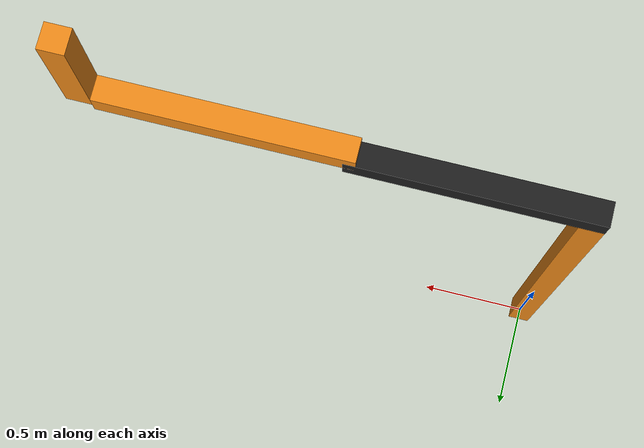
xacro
<?xml version="1.0"?>
<!-- Revolute-Revolute Manipulator -->
<robot name="rrbot" xmlns:xacro="http://www.ros.org/wiki/xacro">

  <!-- Constants for robot dimensions -->
  <xacro:property name="PI" value="3.1415926535897931"/>
  <xacro:property name="mass" value="1" /> <!-- arbitrary value for mass -->
  <xacro:property name="width" value="0.1" /> <!-- Square dimensions (widthxwidth) of beams -->
  <xacro:property name="height1" value="2" /> <!-- Link 1 -->
  <xacro:property name="height2" value="1" /> <!-- Link 2 -->
  <xacro:property name="height3" value="1" /> <!-- Link 3 -->
  <xacro:property name="height4" value="0.5" /> <!-- Link 4 -->
  <xacro:property name="camera_link" value="0.05" /> <!-- Size of square 'camera' box -->
  <xacro:property name="axel_offset" value="0.05" /> <!-- Space btw top of beam and the each joint -->

  <!-- Import all Gazebo-customization elements, including Gazebo colors -->
  <!-- Import Rviz colors -->

  <!-- Used for fixing robot to Gazebo 'base_link' -->
  <link name="world"/>

  <joint name="fixed" type="fixed">
    <parent link="world"/>
    <child link="link1"/>
  </joint>

  <!-- Base Link -->
  <link name="link1">
    <collision>
      <origin xyz="0 0 ${height1/2}" rpy="0 0 0"/>
      <geometry>
	<box size="${width} ${width} ${height1}"/>
      </geometry>
    </collision>

    <visual>
      <origin xyz="0 0 ${height1/2}" rpy="0 0 0"/>
      <geometry>
	<box size="${width} ${width} ${height1}"/>
      </geometry>
      <material name="orange"/>
    </visual>

    <inertial>
      <origin xyz="0 0 ${height1/2}" rpy="0 0 0"/>
      <mass value="${mass}"/>
      <inertia
	  ixx="${mass / 12.0 * (width*width + height1*height1)}" ixy="0.0" ixz="0.0"
	  iyy="${mass / 12.0 * (height1*height1 + width*width)}" iyz="0.0"
	  izz="${mass / 12.0 * (width*width + width*width)}"/>
    </inertial>
  </link>

  <joint name="joint1" type="continuous">
    <parent link="link1"/>
    <child link="link2"/>
    <origin xyz="0 0 ${height1 + width - axel_offset}" rpy="0 0 0"/>
    <axis xyz="0 0 1"/>
    <dynamics damping="0.7"/>
  </joint>

  <!-- Middle Link -->
  <link name="link2">
    <collision>
      <origin xyz="${height2/2 - axel_offset} 0 0 " rpy="0 1.57 0"/>
      <geometry>
	<box size="${width} ${width} ${height2}"/>
      </geometry>
    </collision>

    <visual>
      <origin xyz="${height2/2 - axel_offset} 0 0 " rpy="0 1.57 0"/>
      <geometry>
	<box size="${width} ${width} ${height2}"/>
      </geometry>
      <material name="black"/>
    </visual>

    <inertial>
      <origin xyz="${height2/2 - axel_offset} 0 0 " rpy="0 1.57 0"/>
      <mass value="${mass}"/>
      <inertia
	  izz="${mass / 12.0 * (width*width + height2*height2)}" ixy="0.0" ixz="0.0"
	  iyy="${mass / 12.0 * (height2*height2 + width*width)}" iyz="0.0"
	  ixx="${mass / 12.0 * (width*width + width*width)}"/>
    </inertial>
  </link>

  <joint name="joint2" type="continuous">
    <parent link="link2"/>
    <child link="link3"/>
    <origin xyz="${height2 - axel_offset} 0 ${width  - axel_offset}" rpy="0 0 0"/>
    <axis xyz="0 0 1"/>
    <dynamics damping="0.7"/>
  </joint>

  <!-- Top Link -->
  <link name="link3">
    <collision>
      <origin xyz="${height2/2 - axel_offset } 0 0 " rpy="0 1.57 0"/>
      <geometry>
	<box size="${width} ${width} ${height3}"/>
      </geometry>
    </collision>

    <visual>
      <origin xyz="${height2/2 - axel_offset} 0 0 " rpy="0 1.57 0"/>
      <geometry>
	<box size="${width} ${width} ${height3}"/>
      </geometry>
      <material name="orange"/>
    </visual>

    <inertial>
      <origin xyz="${height2/2 - axel_offset} 0 0 " rpy="0 1.57 0"/>
      <mass value="${mass}"/>
      <inertia
	  izz="${mass / 12.0 * (width*width + height3*height3)}" ixy="0.0" ixz="0.0"
	  iyy="${mass / 12.0 * (height3*height3 + width*width)}" iyz="0.0"
	  ixx="${mass / 12.0 * (width*width + width*width)}"/>
    </inertial>
  </link>

  <joint name="joint3" type="prismatic">
    <parent link="link3"/>
    <child link="link4"/>
    <origin xyz="${height3 - axel_offset} 0 ${height4/2}" rpy="0 0 0"/>
    <axis xyz="0 0 1"/>
    <limit lower = "${height4}" upper = "0" effort = "1" velocity="1"/>
  </joint>

  <!-- Top Link -->
  <link name="link4">
    <collision>
      <origin xyz="${axel_offset} 0 0 " rpy="0 0 0"/>
      <geometry>
  <box size="${width} ${width} ${height4}"/>
      </geometry>
    </collision>

    <visual>
      <origin xyz="${axel_offset} 0 0 " rpy="0 0 0"/>
      <geometry>
  <box size="${width} ${width} ${height4}"/>
      </geometry>
      <material name="orange"/>
    </visual>

    <inertial>
      <origin xyz="${axel_offset} 0 0" rpy="0 0 0"/>
      <mass value="${mass}"/>
      <inertia
    ixx="${mass / 12.0 * (width*width + height3*height3)}" ixy="0.0" ixz="0.0"
    iyy="${mass / 12.0 * (height3*height3 + width*width)}" iyz="0.0"
    izz="${mass / 12.0 * (width*width + width*width)}"/>
    </inertial>
  </link>
</robot>
